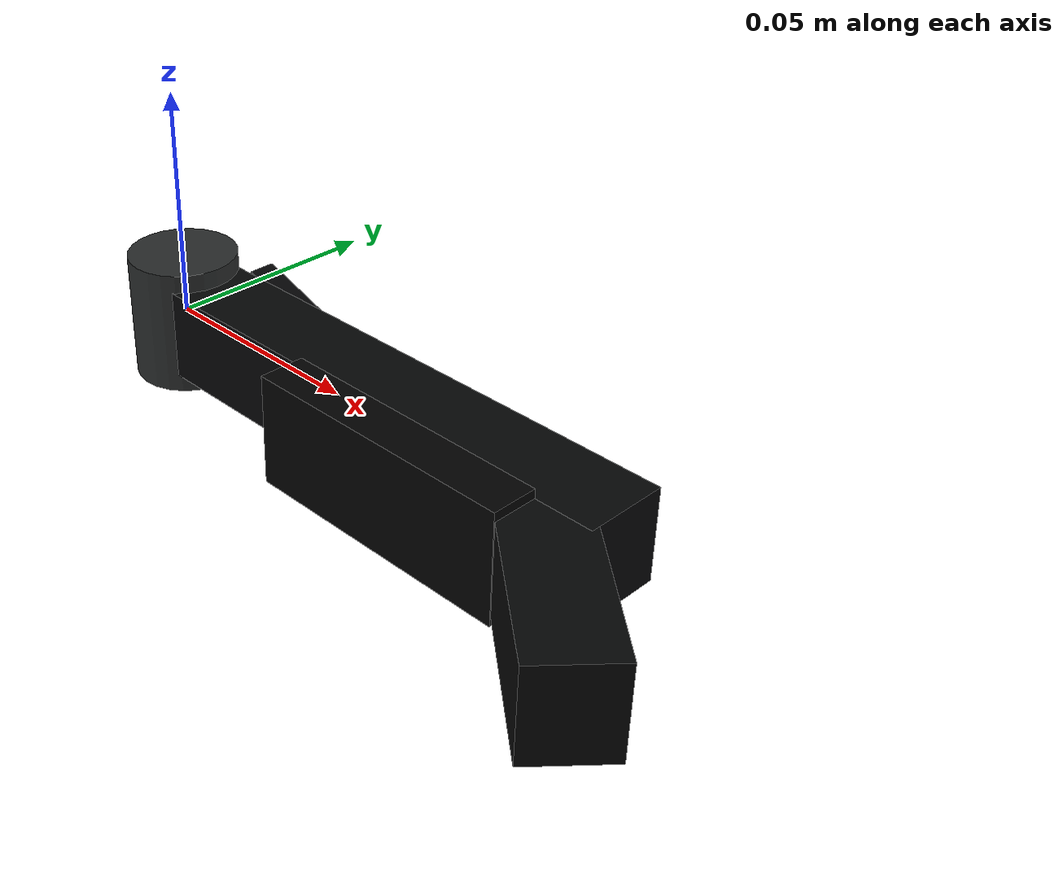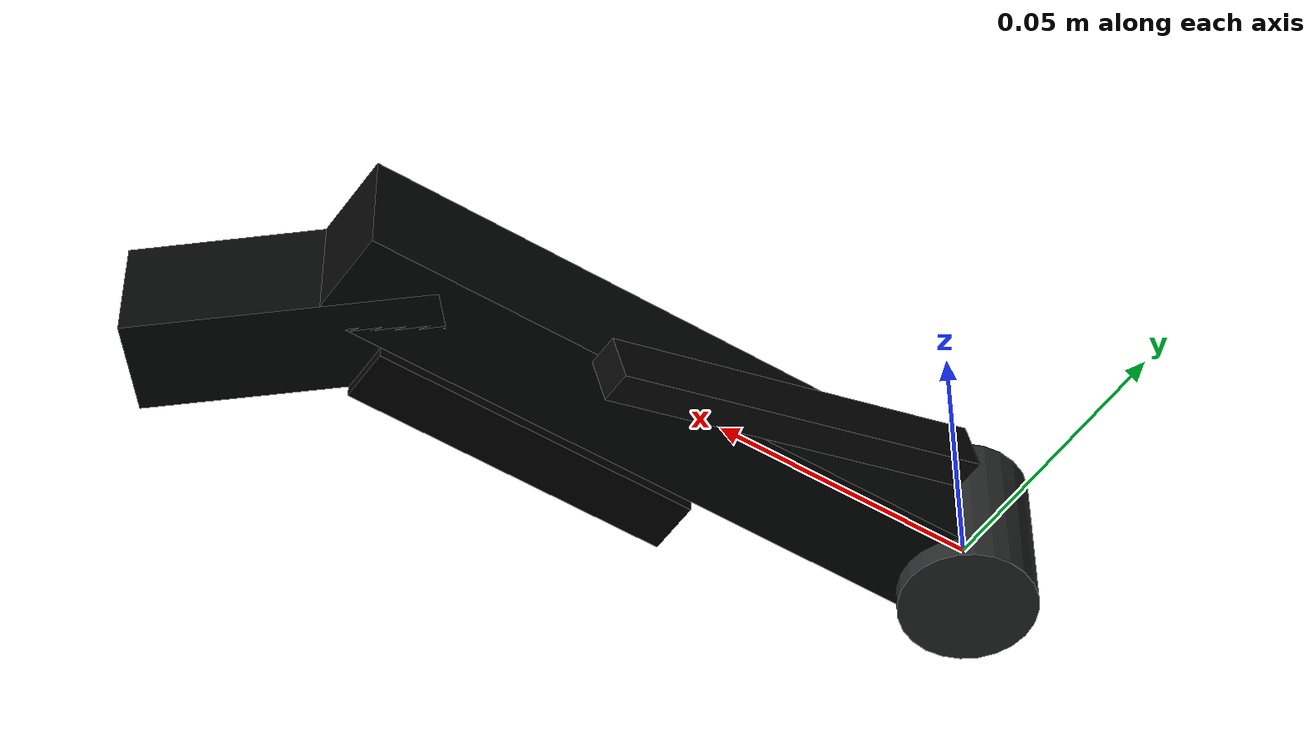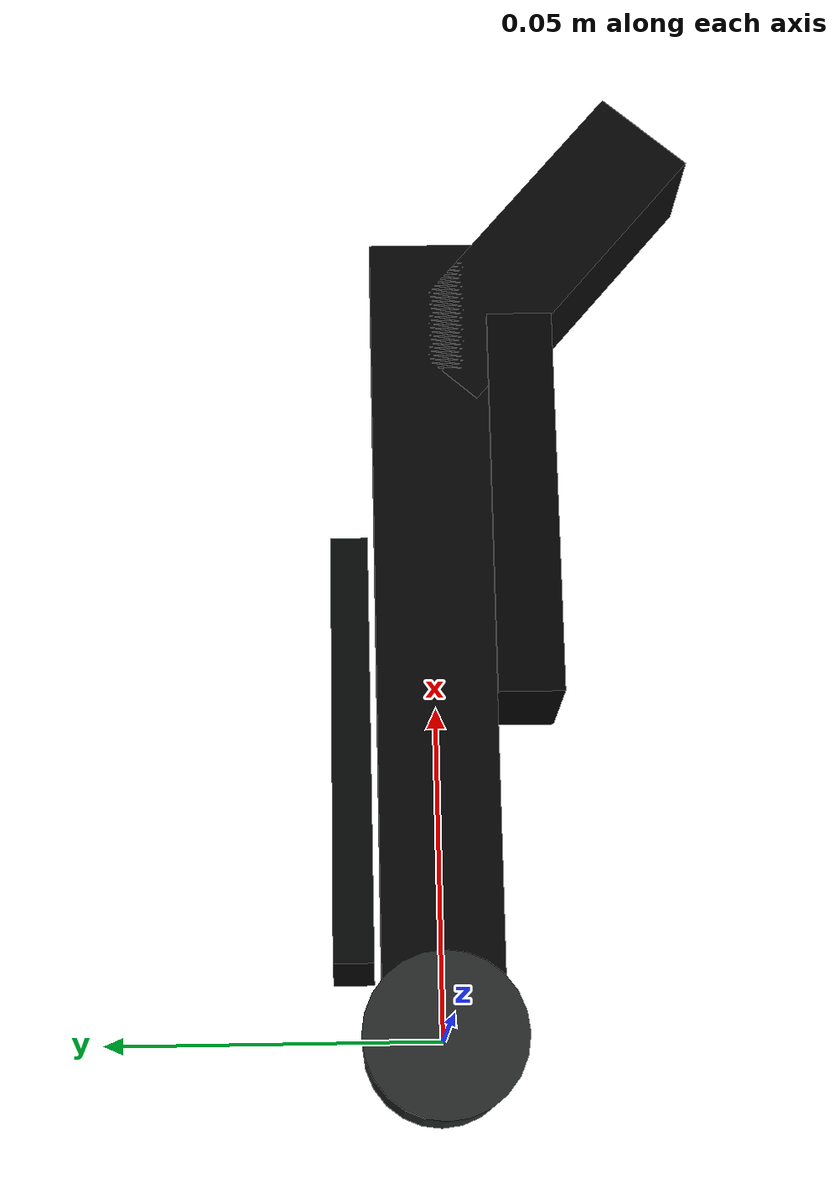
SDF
<?xml version="1.0"?>
<sdf version="1.9">
  <model name="gamantaray_gripper_left_jaw_visual">
    <static>true</static>
    <link name="jaw_link">
      <visual name="pivot_pin">
        <pose>0 0 0 0 0 0</pose>
        <geometry><cylinder><radius>0.012</radius><length>0.028</length></cylinder></geometry>
        <material>
          <ambient>0.10 0.11 0.11 1</ambient>
          <diffuse>0.16 0.17 0.17 1</diffuse>
          <specular>0.35 0.35 0.34 1</specular>
        </material>
      </visual>
      <visual name="main_finger">
        <pose>0.060 0 0 0 0 0</pose>
        <geometry><box><size>0.125 0.018 0.020</size></box></geometry>
        <material>
          <ambient>0.010 0.011 0.012 1</ambient>
          <diffuse>0.020 0.022 0.024 1</diffuse>
          <specular>0.18 0.18 0.18 1</specular>
        </material>
      </visual>
      <visual name="inner_pad">
        <pose>0.080 -0.014 0 0 0 0</pose>
        <geometry><box><size>0.060 0.010 0.024</size></box></geometry>
        <material>
          <ambient>0.002 0.002 0.002 1</ambient>
          <diffuse>0.006 0.006 0.006 1</diffuse>
        </material>
      </visual>
      <visual name="curved_tip">
        <pose>0.122 -0.018 0 0 0 -0.72</pose>
        <geometry><box><size>0.052 0.017 0.020</size></box></geometry>
        <material>
          <ambient>0.010 0.011 0.012 1</ambient>
          <diffuse>0.020 0.022 0.024 1</diffuse>
          <specular>0.18 0.18 0.18 1</specular>
        </material>
      </visual>
      <visual name="side_truss">
        <pose>0.045 0.013 -0.006 0.00 0.32 0</pose>
        <geometry><box><size>0.075 0.006 0.008</size></box></geometry>
        <material>
          <ambient>0.012 0.013 0.014 1</ambient>
          <diffuse>0.022 0.024 0.026 1</diffuse>
        </material>
      </visual>
    </link>
  </model>
</sdf>
